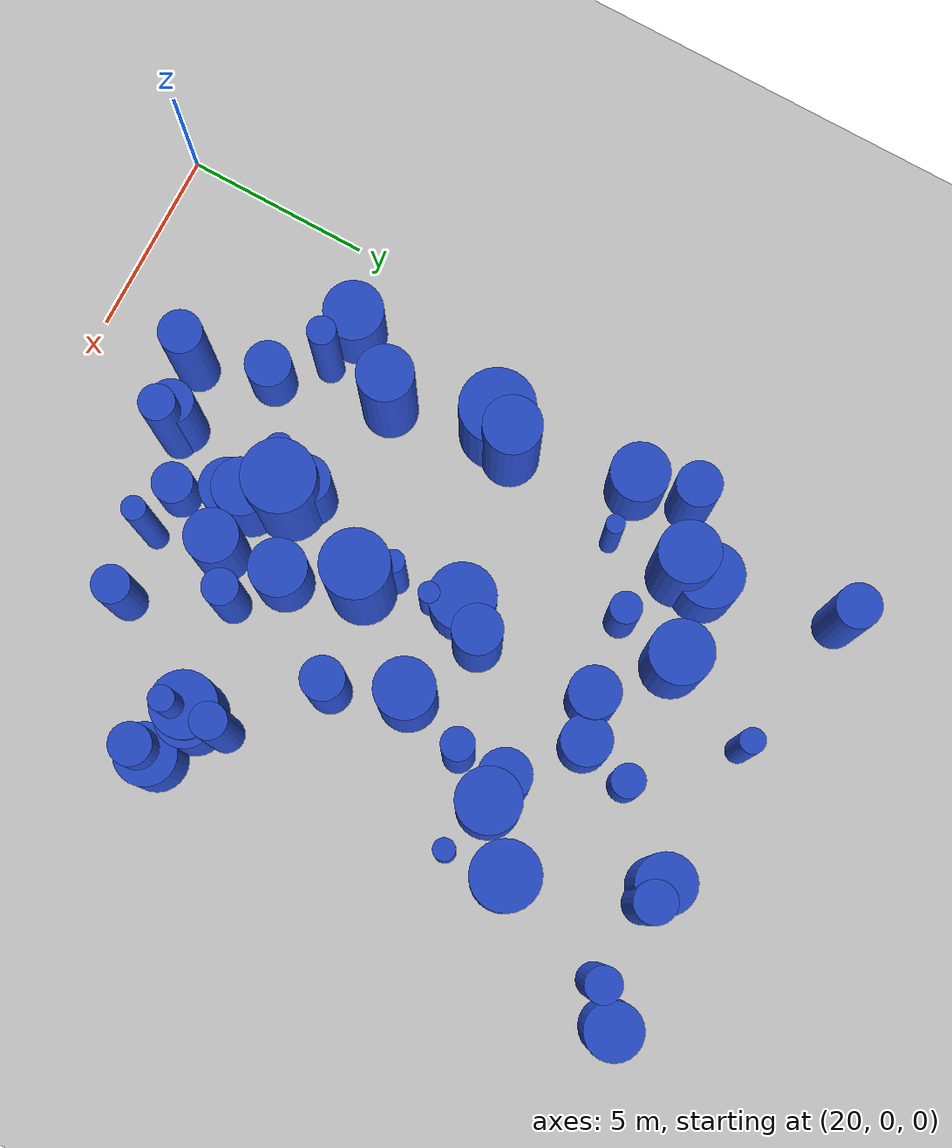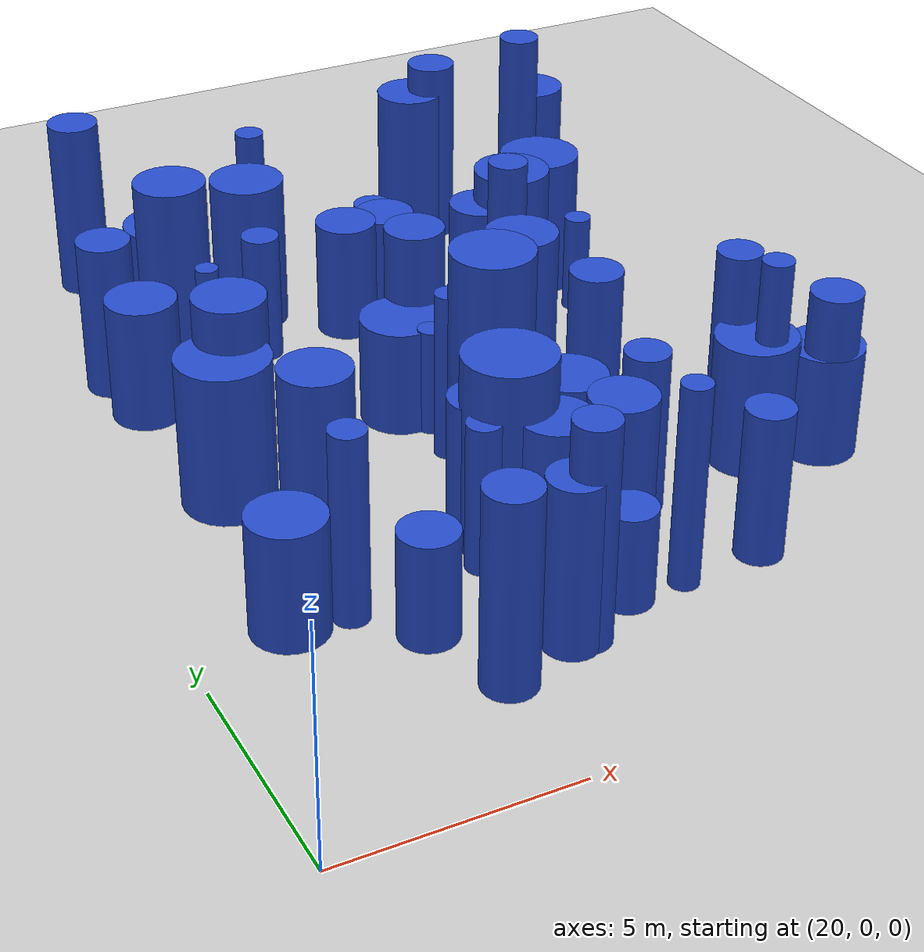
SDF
<sdf version="1.6">
 <world name="default">
  <model name="ground_plane">
   <static>1</static>
   <link name="link">
    <collision name="collision">
     <geometry><plane><normal>0 0 1</normal><size>100 100</size></plane></geometry>
     <surface><friction><ode><mu>100</mu><mu2>50</mu2></ode></friction></surface>
    </collision>
    <visual name="visual">
     <cast_shadows>0</cast_shadows>
     <geometry><plane><normal>0 0 1</normal><size>100 100</size></plane></geometry>
     <material>
      <script><uri>file://media/materials/scripts/gazebo.material</uri><name>Gazebo/Grey</name></script>
     </material>
    </visual>
   </link>
  </model>
  <model name="13">
   <static>0</static>
   <link name="link">
    <inertial>
     <mass>2</mass>
     <inertia><ixx>1.70434</ixx><ixy>0</ixy><ixz>0</ixz><iyy>1.70434</iyy><iyz>0</iyz><izz>0.588243</izz></inertia>
    </inertial>
    <collision name="collision">
     <geometry><cylinder><length>2.90883</length><radius>0.76697</radius></cylinder></geometry>
     <surface><contact><collide_without_contact>1</collide_without_contact></contact></surface>
    </collision>
    <visual name="visual">
     <geometry><cylinder><length>2.90883</length><radius>0.76697</radius></cylinder></geometry>
     <material>
      <script><uri>file://media/materials/scripts/gazebo.material</uri><name>Gazebo/Blue</name></script>
     </material>
    </visual>
    <gravity>0</gravity>
   </link>
   <pose>28.8619 7.69367 1.45441 0 -0 0</pose>
  </model>
  <model name="20">
   <static>0</static>
   <link name="link">
    <inertial>
     <mass>2</mass>
     <inertia><ixx>1.70834</ixx><ixy>0</ixy><ixz>0</ixz><iyy>1.70834</iyy><iyz>0</iyz><izz>0.487048</izz></inertia>
    </inertial>
    <collision name="collision">
     <geometry><cylinder><length>2.96461</length><radius>0.697888</radius></cylinder></geometry>
     <surface><contact><collide_without_contact>1</collide_without_contact></contact></surface>
    </collision>
    <visual name="visual">
     <geometry><cylinder><length>2.96461</length><radius>0.697888</radius></cylinder></geometry>
     <material>
      <script><uri>file://media/materials/scripts/gazebo.material</uri><name>Gazebo/Blue</name></script>
     </material>
    </visual>
    <gravity>0</gravity>
   </link>
   <pose>30.726 15.2064 1.4823 0 -0 0</pose>
  </model>
  <model name="34">
   <static>0</static>
   <link name="link">
    <inertial>
     <mass>2</mass>
     <inertia><ixx>2.43561</ixx><ixy>0</ixy><ixz>0</ixz><iyy>2.43561</iyy><iyz>0</iyz><izz>0.710721</izz></inertia>
    </inertial>
    <collision name="collision">
     <geometry><cylinder><length>3.53292</length><radius>0.843043</radius></cylinder></geometry>
     <surface><contact><collide_without_contact>1</collide_without_contact></contact></surface>
    </collision>
    <visual name="visual">
     <geometry><cylinder><length>3.53292</length><radius>0.843043</radius></cylinder></geometry>
     <material>
      <script><uri>file://media/materials/scripts/gazebo.material</uri><name>Gazebo/Blue</name></script>
     </material>
    </visual>
    <gravity>0</gravity>
   </link>
   <pose>25.9964 17.6182 1.76646 0 -0 0</pose>
  </model>
  <model name="39">
   <static>0</static>
   <link name="link">
    <inertial>
     <mass>2</mass>
     <inertia><ixx>3.37987</ixx><ixy>0</ixy><ixz>0</ixz><iyy>3.37987</iyy><iyz>0</iyz><izz>0.590027</izz></inertia>
    </inertial>
    <collision name="collision">
     <geometry><cylinder><length>4.30223</length><radius>0.768132</radius></cylinder></geometry>
     <surface><contact><collide_without_contact>1</collide_without_contact></contact></surface>
    </collision>
    <visual name="visual">
     <geometry><cylinder><length>4.30223</length><radius>0.768132</radius></cylinder></geometry>
     <material>
      <script><uri>file://media/materials/scripts/gazebo.material</uri><name>Gazebo/Blue</name></script>
     </material>
    </visual>
    <gravity>0</gravity>
   </link>
   <pose>23.0982 11.2765 2.15111 0 -0 0</pose>
  </model>
  <model name="46">
   <static>0</static>
   <link name="link">
    <inertial>
     <mass>2</mass>
     <inertia><ixx>3.78584</ixx><ixy>0</ixy><ixz>0</ixz><iyy>3.78584</iyy><iyz>0</iyz><izz>0.112612</izz></inertia>
    </inertial>
    <collision name="collision">
     <geometry><cylinder><length>4.73045</length><radius>0.335577</radius></cylinder></geometry>
     <surface><contact><collide_without_contact>1</collide_without_contact></contact></surface>
    </collision>
    <visual name="visual">
     <geometry><cylinder><length>4.73045</length><radius>0.335577</radius></cylinder></geometry>
     <material>
      <script><uri>file://media/materials/scripts/gazebo.material</uri><name>Gazebo/Blue</name></script>
     </material>
    </visual>
    <gravity>0</gravity>
   </link>
   <pose>33.1677 7.04828 2.36523 0 -0 0</pose>
  </model>
  <model name="47">
   <static>0</static>
   <link name="link">
    <inertial>
     <mass>2</mass>
     <inertia><ixx>3.36538</ixx><ixy>0</ixy><ixz>0</ixz><iyy>3.36538</iyy><iyz>0</iyz><izz>0.233826</izz></inertia>
    </inertial>
    <collision name="collision">
     <geometry><cylinder><length>4.41484</length><radius>0.483555</radius></cylinder></geometry>
     <surface><contact><collide_without_contact>1</collide_without_contact></contact></surface>
    </collision>
    <visual name="visual">
     <geometry><cylinder><length>4.41484</length><radius>0.483555</radius></cylinder></geometry>
     <material>
      <script><uri>file://media/materials/scripts/gazebo.material</uri><name>Gazebo/Blue</name></script>
     </material>
    </visual>
    <gravity>0</gravity>
   </link>
   <pose>33.0919 8.26592 2.20742 0 -0 0</pose>
  </model>
  <model name="60">
   <static>0</static>
   <link name="link">
    <inertial>
     <mass>2</mass>
     <inertia><ixx>1.10854</ixx><ixy>0</ixy><ixz>0</ixz><iyy>1.10854</iyy><iyz>0</iyz><izz>0.377234</izz></inertia>
    </inertial>
    <collision name="collision">
     <geometry><cylinder><length>2.34937</length><radius>0.614194</radius></cylinder></geometry>
     <surface><contact><collide_without_contact>1</collide_without_contact></contact></surface>
    </collision>
    <visual name="visual">
     <geometry><cylinder><length>2.34937</length><radius>0.614194</radius></cylinder></geometry>
     <material>
      <script><uri>file://media/materials/scripts/gazebo.material</uri><name>Gazebo/Blue</name></script>
     </material>
    </visual>
    <gravity>0</gravity>
   </link>
   <pose>24.3057 4.8136 1.17468 0 -0 0</pose>
  </model>
  <model name="62">
   <static>0</static>
   <link name="link">
    <inertial>
     <mass>2</mass>
     <inertia><ixx>1.51598</ixx><ixy>0</ixy><ixz>0</ixz><iyy>1.51598</iyy><iyz>0</iyz><izz>0.623706</izz></inertia>
    </inertial>
    <collision name="collision">
     <geometry><cylinder><length>2.68789</length><radius>0.789751</radius></cylinder></geometry>
     <surface><contact><collide_without_contact>1</collide_without_contact></contact></surface>
    </collision>
    <visual name="visual">
     <geometry><cylinder><length>2.68789</length><radius>0.789751</radius></cylinder></geometry>
     <material>
      <script><uri>file://media/materials/scripts/gazebo.material</uri><name>Gazebo/Blue</name></script>
     </material>
    </visual>
    <gravity>0</gravity>
   </link>
   <pose>33.2636 7.46518 1.34395 0 -0 0</pose>
  </model>
  <model name="78">
   <static>0</static>
   <link name="link">
    <inertial>
     <mass>2</mass>
     <inertia><ixx>1.63411</ixx><ixy>0</ixy><ixz>0</ixz><iyy>1.63411</iyy><iyz>0</iyz><izz>0.609649</izz></inertia>
    </inertial>
    <collision name="collision">
     <geometry><cylinder><length>2.82413</length><radius>0.7808</radius></cylinder></geometry>
     <surface><contact><collide_without_contact>1</collide_without_contact></contact></surface>
    </collision>
    <visual name="visual">
     <geometry><cylinder><length>2.82413</length><radius>0.7808</radius></cylinder></geometry>
     <material>
      <script><uri>file://media/materials/scripts/gazebo.material</uri><name>Gazebo/Blue</name></script>
     </material>
    </visual>
    <gravity>0</gravity>
   </link>
   <pose>22.3342 14.5742 1.41207 0 -0 0</pose>
  </model>
  <model name="87">
   <static>0</static>
   <link name="link">
    <inertial>
     <mass>2</mass>
     <inertia><ixx>3.47091</ixx><ixy>0</ixy><ixz>0</ixz><iyy>3.47091</iyy><iyz>0</iyz><izz>0.644605</izz></inertia>
    </inertial>
    <collision name="collision">
     <geometry><cylinder><length>4.34645</length><radius>0.802873</radius></cylinder></geometry>
     <surface><contact><collide_without_contact>1</collide_without_contact></contact></surface>
    </collision>
    <visual name="visual">
     <geometry><cylinder><length>4.34645</length><radius>0.802873</radius></cylinder></geometry>
     <material>
      <script><uri>file://media/materials/scripts/gazebo.material</uri><name>Gazebo/Blue</name></script>
     </material>
    </visual>
    <gravity>0</gravity>
   </link>
   <pose>23.8248 16.6199 2.17323 0 -0 0</pose>
  </model>
  <model name="91">
   <static>0</static>
   <link name="link">
    <inertial>
     <mass>2</mass>
     <inertia><ixx>1.81304</ixx><ixy>0</ixy><ixz>0</ixz><iyy>1.81304</iyy><iyz>0</iyz><izz>0.779024</izz></inertia>
    </inertial>
    <collision name="collision">
     <geometry><cylinder><length>2.92252</length><radius>0.882623</radius></cylinder></geometry>
     <surface><contact><collide_without_contact>1</collide_without_contact></contact></surface>
    </collision>
    <visual name="visual">
     <geometry><cylinder><length>2.92252</length><radius>0.882623</radius></cylinder></geometry>
     <material>
      <script><uri>file://media/materials/scripts/gazebo.material</uri><name>Gazebo/Blue</name></script>
     </material>
    </visual>
    <gravity>0</gravity>
   </link>
   <pose>33.0012 7.31811 1.46126 0 -0 0</pose>
  </model>
  <model name="101">
   <static>0</static>
   <link name="link">
    <inertial>
     <mass>2</mass>
     <inertia>
      <ixx>0.931998</ixx>
      <ixy>0</ixy>
      <ixz>0</ixz>
      <iyy>0.931998</iyy>
      <iyz>0</iyz>
      <izz>0.0897076</izz>
     </inertia>
    </inertial>
    <collision name="collision">
     <geometry><cylinder><length>2.30713</length><radius>0.299512</radius></cylinder></geometry>
     <surface><contact><collide_without_contact>1</collide_without_contact></contact></surface>
    </collision>
    <visual name="visual">
     <geometry><cylinder><length>2.30713</length><radius>0.299512</radius></cylinder></geometry>
     <material>
      <script><uri>file://media/materials/scripts/gazebo.material</uri><name>Gazebo/Blue</name></script>
     </material>
    </visual>
    <gravity>0</gravity>
   </link>
   <pose>33.0448 14.7316 1.15357 0 -0 0</pose>
  </model>
  <model name="102">
   <static>0</static>
   <link name="link">
    <inertial>
     <mass>2</mass>
     <inertia><ixx>3.95692</ixx><ixy>0</ixy><ixz>0</ixz><iyy>3.95692</iyy><iyz>0</iyz><izz>0.21991</izz></inertia>
    </inertial>
    <collision name="collision">
     <geometry><cylinder><length>4.80435</length><radius>0.468946</radius></cylinder></geometry>
     <surface><contact><collide_without_contact>1</collide_without_contact></contact></surface>
    </collision>
    <visual name="visual">
     <geometry><cylinder><length>4.80435</length><radius>0.468946</radius></cylinder></geometry>
     <material>
      <script><uri>file://media/materials/scripts/gazebo.material</uri><name>Gazebo/Blue</name></script>
     </material>
    </visual>
    <gravity>0</gravity>
   </link>
   <pose>26.8728 3.3592 2.40217 0 -0 0</pose>
  </model>
  <model name="112">
   <static>0</static>
   <link name="link">
    <inertial>
     <mass>2</mass>
     <inertia><ixx>3.3803</ixx><ixy>0</ixy><ixz>0</ixz><iyy>3.3803</iyy><iyz>0</iyz><izz>0.0999277</izz></inertia>
    </inertial>
    <collision name="collision">
     <geometry><cylinder><length>4.47013</length><radius>0.316113</radius></cylinder></geometry>
     <surface><contact><collide_without_contact>1</collide_without_contact></contact></surface>
    </collision>
    <visual name="visual">
     <geometry><cylinder><length>4.47013</length><radius>0.316113</radius></cylinder></geometry>
     <material>
      <script><uri>file://media/materials/scripts/gazebo.material</uri><name>Gazebo/Blue</name></script>
     </material>
    </visual>
    <gravity>0</gravity>
   </link>
   <pose>29.4086 4.09271 2.23506 0 -0 0</pose>
  </model>
  <model name="114">
   <static>0</static>
   <link name="link">
    <inertial>
     <mass>2</mass>
     <inertia><ixx>4.50475</ixx><ixy>0</ixy><ixz>0</ixz><iyy>4.50475</iyy><iyz>0</iyz><izz>0.798311</izz></inertia>
    </inertial>
    <collision name="collision">
     <geometry><cylinder><length>4.96322</length><radius>0.893483</radius></cylinder></geometry>
     <surface><contact><collide_without_contact>1</collide_without_contact></contact></surface>
    </collision>
    <visual name="visual">
     <geometry><cylinder><length>4.96322</length><radius>0.893483</radius></cylinder></geometry>
     <material>
      <script><uri>file://media/materials/scripts/gazebo.material</uri><name>Gazebo/Blue</name></script>
     </material>
    </visual>
    <gravity>0</gravity>
   </link>
   <pose>28.0834 9.5925 2.48161 0 -0 0</pose>
  </model>
  <model name="115">
   <static>0</static>
   <link name="link">
    <inertial>
     <mass>2</mass>
     <inertia><ixx>1.85668</ixx><ixy>0</ixy><ixz>0</ixz><iyy>1.85668</iyy><iyz>0</iyz><izz>0.738716</izz></inertia>
    </inertial>
    <collision name="collision">
     <geometry><cylinder><length>2.98729</length><radius>0.859486</radius></cylinder></geometry>
     <surface><contact><collide_without_contact>1</collide_without_contact></contact></surface>
    </collision>
    <visual name="visual">
     <geometry><cylinder><length>2.98729</length><radius>0.859486</radius></cylinder></geometry>
     <material>
      <script><uri>file://media/materials/scripts/gazebo.material</uri><name>Gazebo/Blue</name></script>
     </material>
    </visual>
    <gravity>0</gravity>
   </link>
   <pose>23.8388 17.3837 1.49365 0 -0 0</pose>
  </model>
  <model name="151">
   <static>0</static>
   <link name="link">
    <inertial>
     <mass>2</mass>
     <inertia><ixx>1.37552</ixx><ixy>0</ixy><ixz>0</ixz><iyy>1.37552</iyy><iyz>0</iyz><izz>0.680923</izz></inertia>
    </inertial>
    <collision name="collision">
     <geometry><cylinder><length>2.49206</length><radius>0.82518</radius></cylinder></geometry>
     <surface><contact><collide_without_contact>1</collide_without_contact></contact></surface>
    </collision>
    <visual name="visual">
     <geometry><cylinder><length>2.49206</length><radius>0.82518</radius></cylinder></geometry>
     <material>
      <script><uri>file://media/materials/scripts/gazebo.material</uri><name>Gazebo/Blue</name></script>
     </material>
    </visual>
    <gravity>0</gravity>
   </link>
   <pose>34.5375 7.01916 1.24603 0 -0 0</pose>
  </model>
  <model name="162">
   <static>0</static>
   <link name="link">
    <inertial>
     <mass>2</mass>
     <inertia><ixx>2.4475</ixx><ixy>0</ixy><ixz>0</ixz><iyy>2.4475</iyy><iyz>0</iyz><izz>0.34297</izz></inertia>
    </inertial>
    <collision name="collision">
     <geometry><cylinder><length>3.69542</length><radius>0.585636</radius></cylinder></geometry>
     <surface><contact><collide_without_contact>1</collide_without_contact></contact></surface>
    </collision>
    <visual name="visual">
     <geometry><cylinder><length>3.69542</length><radius>0.585636</radius></cylinder></geometry>
     <material>
      <script><uri>file://media/materials/scripts/gazebo.material</uri><name>Gazebo/Blue</name></script>
     </material>
    </visual>
    <gravity>0</gravity>
   </link>
   <pose>26.54 3.40689 1.84771 0 -0 0</pose>
  </model>
  <model name="208">
   <static>0</static>
   <link name="link">
    <inertial>
     <mass>2</mass>
     <inertia><ixx>1.46397</ixx><ixy>0</ixy><ixz>0</ixz><iyy>1.46397</iyy><iyz>0</iyz><izz>0.473892</izz></inertia>
    </inertial>
    <collision name="collision">
     <geometry><cylinder><length>2.71333</length><radius>0.688398</radius></cylinder></geometry>
     <surface><contact><collide_without_contact>1</collide_without_contact></contact></surface>
    </collision>
    <visual name="visual">
     <geometry><cylinder><length>2.71333</length><radius>0.688398</radius></cylinder></geometry>
     <material>
      <script><uri>file://media/materials/scripts/gazebo.material</uri><name>Gazebo/Blue</name></script>
     </material>
    </visual>
    <gravity>0</gravity>
   </link>
   <pose>27.8096 16.1952 1.35667 0 -0 0</pose>
  </model>
  <model name="223">
   <static>0</static>
   <link name="link">
    <inertial>
     <mass>2</mass>
     <inertia><ixx>2.21904</ixx><ixy>0</ixy><ixz>0</ixz><iyy>2.21904</iyy><iyz>0</iyz><izz>0.848095</izz></inertia>
    </inertial>
    <collision name="collision">
     <geometry><cylinder><length>3.28177</length><radius>0.920921</radius></cylinder></geometry>
     <surface><contact><collide_without_contact>1</collide_without_contact></contact></surface>
    </collision>
    <visual name="visual">
     <geometry><cylinder><length>3.28177</length><radius>0.920921</radius></cylinder></geometry>
     <material>
      <script><uri>file://media/materials/scripts/gazebo.material</uri><name>Gazebo/Blue</name></script>
     </material>
    </visual>
    <gravity>0</gravity>
   </link>
   <pose>32.9111 16.3928 1.64088 0 -0 0</pose>
  </model>
  <model name="238">
   <static>0</static>
   <link name="link">
    <inertial>
     <mass>2</mass>
     <inertia><ixx>2.01822</ixx><ixy>0</ixy><ixz>0</ixz><iyy>2.01822</iyy><iyz>0</iyz><izz>0.113339</izz></inertia>
    </inertial>
    <collision name="collision">
     <geometry><cylinder><length>3.43065</length><radius>0.336659</radius></cylinder></geometry>
     <surface><contact><collide_without_contact>1</collide_without_contact></contact></surface>
    </collision>
    <visual name="visual">
     <geometry><cylinder><length>3.43065</length><radius>0.336659</radius></cylinder></geometry>
     <material>
      <script><uri>file://media/materials/scripts/gazebo.material</uri><name>Gazebo/Blue</name></script>
     </material>
    </visual>
    <gravity>0</gravity>
   </link>
   <pose>27.1013 20.1795 1.71532 0 -0 0</pose>
  </model>
  <model name="244">
   <static>0</static>
   <link name="link">
    <inertial>
     <mass>2</mass>
     <inertia><ixx>2.34129</ixx><ixy>0</ixy><ixz>0</ixz><iyy>2.34129</iyy><iyz>0</iyz><izz>0.33506</izz></inertia>
    </inertial>
    <collision name="collision">
     <geometry><cylinder><length>3.61145</length><radius>0.578844</radius></cylinder></geometry>
     <surface><contact><collide_without_contact>1</collide_without_contact></contact></surface>
    </collision>
    <visual name="visual">
     <geometry><cylinder><length>3.61145</length><radius>0.578844</radius></cylinder></geometry>
     <material>
      <script><uri>file://media/materials/scripts/gazebo.material</uri><name>Gazebo/Blue</name></script>
     </material>
    </visual>
    <gravity>0</gravity>
   </link>
   <pose>30.8207 10.1139 1.80572 0 -0 0</pose>
  </model>
  <model name="252">
   <static>0</static>
   <link name="link">
    <inertial>
     <mass>2</mass>
     <inertia><ixx>2.95817</ixx><ixy>0</ixy><ixz>0</ixz><iyy>2.95817</iyy><iyz>0</iyz><izz>0.143518</izz></inertia>
    </inertial>
    <collision name="collision">
     <geometry><cylinder><length>4.16155</length><radius>0.378837</radius></cylinder></geometry>
     <surface><contact><collide_without_contact>1</collide_without_contact></contact></surface>
    </collision>
    <visual name="visual">
     <geometry><cylinder><length>4.16155</length><radius>0.378837</radius></cylinder></geometry>
     <material>
      <script><uri>file://media/materials/scripts/gazebo.material</uri><name>Gazebo/Blue</name></script>
     </material>
    </visual>
    <gravity>0</gravity>
   </link>
   <pose>23.2345 5.92443 2.08077 0 -0 0</pose>
  </model>
  <model name="257">
   <static>0</static>
   <link name="link">
    <inertial>
     <mass>2</mass>
     <inertia><ixx>1.56537</ixx><ixy>0</ixy><ixz>0</ixz><iyy>1.56537</iyy><iyz>0</iyz><izz>0.177671</izz></inertia>
    </inertial>
    <collision name="collision">
     <geometry><cylinder><length>2.97645</length><radius>0.42151</radius></cylinder></geometry>
     <surface><contact><collide_without_contact>1</collide_without_contact></contact></surface>
    </collision>
    <visual name="visual">
     <geometry><cylinder><length>2.97645</length><radius>0.42151</radius></cylinder></geometry>
     <material>
      <script><uri>file://media/materials/scripts/gazebo.material</uri><name>Gazebo/Blue</name></script>
     </material>
    </visual>
    <gravity>0</gravity>
   </link>
   <pose>25.5932 15.8806 1.48822 0 -0 0</pose>
  </model>
  <model name="259">
   <static>0</static>
   <link name="link">
    <inertial>
     <mass>2</mass>
     <inertia><ixx>3.12119</ixx><ixy>0</ixy><ixz>0</ixz><iyy>3.12119</iyy><iyz>0</iyz><izz>0.337303</izz></inertia>
    </inertial>
    <collision name="collision">
     <geometry><cylinder><length>4.20894</length><radius>0.580778</radius></cylinder></geometry>
     <surface><contact><collide_without_contact>1</collide_without_contact></contact></surface>
    </collision>
    <visual name="visual">
     <geometry><cylinder><length>4.20894</length><radius>0.580778</radius></cylinder></geometry>
     <material>
      <script><uri>file://media/materials/scripts/gazebo.material</uri><name>Gazebo/Blue</name></script>
     </material>
    </visual>
    <gravity>0</gravity>
   </link>
   <pose>23.0142 20.8935 2.10447 0 -0 0</pose>
  </model>
  <model name="263">
   <static>0</static>
   <link name="link">
    <inertial>
     <mass>2</mass>
     <inertia><ixx>2.32539</ixx><ixy>0</ixy><ixz>0</ixz><iyy>2.32539</iyy><iyz>0</iyz><izz>0.354102</izz></inertia>
    </inertial>
    <collision name="collision">
     <geometry><cylinder><length>3.59027</length><radius>0.595065</radius></cylinder></geometry>
     <surface><contact><collide_without_contact>1</collide_without_contact></contact></surface>
    </collision>
    <visual name="visual">
     <geometry><cylinder><length>3.59027</length><radius>0.595065</radius></cylinder></geometry>
     <material>
      <script><uri>file://media/materials/scripts/gazebo.material</uri><name>Gazebo/Blue</name></script>
     </material>
    </visual>
    <gravity>0</gravity>
   </link>
   <pose>22.0576 16.0356 1.79513 0 -0 0</pose>
  </model>
  <model name="265">
   <static>0</static>
   <link name="link">
    <inertial>
     <mass>2</mass>
     <inertia><ixx>2.73754</ixx><ixy>0</ixy><ixz>0</ixz><iyy>2.73754</iyy><iyz>0</iyz><izz>0.622234</izz></inertia>
    </inertial>
    <collision name="collision">
     <geometry><cylinder><length>3.81556</length><radius>0.788818</radius></cylinder></geometry>
     <surface><contact><collide_without_contact>1</collide_without_contact></contact></surface>
    </collision>
    <visual name="visual">
     <geometry><cylinder><length>3.81556</length><radius>0.788818</radius></cylinder></geometry>
     <material>
      <script><uri>file://media/materials/scripts/gazebo.material</uri><name>Gazebo/Blue</name></script>
     </material>
    </visual>
    <gravity>0</gravity>
   </link>
   <pose>31.2336 19.9196 1.90778 0 -0 0</pose>
  </model>
  <model name="280">
   <static>0</static>
   <link name="link">
    <inertial>
     <mass>2</mass>
     <inertia><ixx>3.98305</ixx><ixy>0</ixy><ixz>0</ixz><iyy>3.98305</iyy><iyz>0</iyz><izz>0.22391</izz></inertia>
    </inertial>
    <collision name="collision">
     <geometry><cylinder><length>4.8194</length><radius>0.473192</radius></cylinder></geometry>
     <surface><contact><collide_without_contact>1</collide_without_contact></contact></surface>
    </collision>
    <visual name="visual">
     <geometry><cylinder><length>4.8194</length><radius>0.473192</radius></cylinder></geometry>
     <material>
      <script><uri>file://media/materials/scripts/gazebo.material</uri><name>Gazebo/Blue</name></script>
     </material>
    </visual>
    <gravity>0</gravity>
   </link>
   <pose>34.0991 19.6522 2.4097 0 -0 0</pose>
  </model>
  <model name="288">
   <static>0</static>
   <link name="link">
    <inertial>
     <mass>2</mass>
     <inertia><ixx>2.12665</ixx><ixy>0</ixy><ixz>0</ixz><iyy>2.12665</iyy><iyz>0</iyz><izz>0.506868</izz></inertia>
    </inertial>
    <collision name="collision">
     <geometry><cylinder><length>3.3525</length><radius>0.711946</radius></cylinder></geometry>
     <surface><contact><collide_without_contact>1</collide_without_contact></contact></surface>
    </collision>
    <visual name="visual">
     <geometry><cylinder><length>3.3525</length><radius>0.711946</radius></cylinder></geometry>
     <material>
      <script><uri>file://media/materials/scripts/gazebo.material</uri><name>Gazebo/Blue</name></script>
     </material>
    </visual>
    <gravity>0</gravity>
   </link>
   <pose>28.9908 5.90188 1.67625 0 -0 0</pose>
  </model>
  <model name="291">
   <static>0</static>
   <link name="link">
    <inertial>
     <mass>2</mass>
     <inertia><ixx>3.1864</ixx><ixy>0</ixy><ixz>0</ixz><iyy>3.1864</iyy><iyz>0</iyz><izz>0.322438</izz></inertia>
    </inertial>
    <collision name="collision">
     <geometry><cylinder><length>4.26041</length><radius>0.567836</radius></cylinder></geometry>
     <surface><contact><collide_without_contact>1</collide_without_contact></contact></surface>
    </collision>
    <visual name="visual">
     <geometry><cylinder><length>4.26041</length><radius>0.567836</radius></cylinder></geometry>
     <material>
      <script><uri>file://media/materials/scripts/gazebo.material</uri><name>Gazebo/Blue</name></script>
     </material>
    </visual>
    <gravity>0</gravity>
   </link>
   <pose>24.9587 2.85978 2.1302 0 -0 0</pose>
  </model>
  <model name="304">
   <static>0</static>
   <link name="link">
    <inertial>
     <mass>2</mass>
     <inertia><ixx>1.93853</ixx><ixy>0</ixy><ixz>0</ixz><iyy>1.93853</iyy><iyz>0</iyz><izz>0.416665</izz></inertia>
    </inertial>
    <collision name="collision">
     <geometry><cylinder><length>3.22198</length><radius>0.645496</radius></cylinder></geometry>
     <surface><contact><collide_without_contact>1</collide_without_contact></contact></surface>
    </collision>
    <visual name="visual">
     <geometry><cylinder><length>3.22198</length><radius>0.645496</radius></cylinder></geometry>
     <material>
      <script><uri>file://media/materials/scripts/gazebo.material</uri><name>Gazebo/Blue</name></script>
     </material>
    </visual>
    <gravity>0</gravity>
   </link>
   <pose>26.5999 7.26778 1.61099 0 -0 0</pose>
  </model>
  <model name="310">
   <static>0</static>
   <link name="link">
    <inertial>
     <mass>2</mass>
     <inertia><ixx>3.43589</ixx><ixy>0</ixy><ixz>0</ixz><iyy>3.43589</iyy><iyz>0</iyz><izz>0.553224</izz></inertia>
    </inertial>
    <collision name="collision">
     <geometry><cylinder><length>4.35381</length><radius>0.74379</radius></cylinder></geometry>
     <surface><contact><collide_without_contact>1</collide_without_contact></contact></surface>
    </collision>
    <visual name="visual">
     <geometry><cylinder><length>4.35381</length><radius>0.74379</radius></cylinder></geometry>
     <material>
      <script><uri>file://media/materials/scripts/gazebo.material</uri><name>Gazebo/Blue</name></script>
     </material>
    </visual>
    <gravity>0</gravity>
   </link>
   <pose>23.4674 7.87189 2.1769 0 -0 0</pose>
  </model>
  <model name="314">
   <static>0</static>
   <link name="link">
    <inertial>
     <mass>2</mass>
     <inertia><ixx>1.98252</ixx><ixy>0</ixy><ixz>0</ixz><iyy>1.98252</iyy><iyz>0</iyz><izz>0.25549</izz></inertia>
    </inertial>
    <collision name="collision">
     <geometry><cylinder><length>3.33596</length><radius>0.50546</radius></cylinder></geometry>
     <surface><contact><collide_without_contact>1</collide_without_contact></contact></surface>
    </collision>
    <visual name="visual">
     <geometry><cylinder><length>3.33596</length><radius>0.50546</radius></cylinder></geometry>
     <material>
      <script><uri>file://media/materials/scripts/gazebo.material</uri><name>Gazebo/Blue</name></script>
     </material>
    </visual>
    <gravity>0</gravity>
   </link>
   <pose>31.259 4.30352 1.66798 0 -0 0</pose>
  </model>
  <model name="329">
   <static>0</static>
   <link name="link">
    <inertial>
     <mass>2</mass>
     <inertia><ixx>2.38208</ixx><ixy>0</ixy><ixz>0</ixz><iyy>2.38208</iyy><iyz>0</iyz><izz>0.992538</izz></inertia>
    </inertial>
    <collision name="collision">
     <geometry><cylinder><length>3.36375</length><radius>0.996262</radius></cylinder></geometry>
     <surface><contact><collide_without_contact>1</collide_without_contact></contact></surface>
    </collision>
    <visual name="visual">
     <geometry><cylinder><length>3.36375</length><radius>0.996262</radius></cylinder></geometry>
     <material>
      <script><uri>file://media/materials/scripts/gazebo.material</uri><name>Gazebo/Blue</name></script>
     </material>
    </visual>
    <gravity>0</gravity>
   </link>
   <pose>22.6668 10.6296 1.68188 0 -0 0</pose>
  </model>
  <model name="331">
   <static>0</static>
   <link name="link">
    <inertial>
     <mass>2</mass>
     <inertia><ixx>2.62158</ixx><ixy>0</ixy><ixz>0</ixz><iyy>2.62158</iyy><iyz>0</iyz><izz>0.736227</izz></inertia>
    </inertial>
    <collision name="collision">
     <geometry><cylinder><length>3.67707</length><radius>0.858037</radius></cylinder></geometry>
     <surface><contact><collide_without_contact>1</collide_without_contact></contact></surface>
    </collision>
    <visual name="visual">
     <geometry><cylinder><length>3.67707</length><radius>0.858037</radius></cylinder></geometry>
     <material>
      <script><uri>file://media/materials/scripts/gazebo.material</uri><name>Gazebo/Blue</name></script>
     </material>
    </visual>
    <gravity>0</gravity>
   </link>
   <pose>31.5044 15.1569 1.83853 0 -0 0</pose>
  </model>
  <model name="335">
   <static>0</static>
   <link name="link">
    <inertial>
     <mass>2</mass>
     <inertia><ixx>1.86455</ixx><ixy>0</ixy><ixz>0</ixz><iyy>1.86455</iyy><iyz>0</iyz><izz>0.131752</izz></inertia>
    </inertial>
    <collision name="collision">
     <geometry><cylinder><length>3.28512</length><radius>0.362977</radius></cylinder></geometry>
     <surface><contact><collide_without_contact>1</collide_without_contact></contact></surface>
    </collision>
    <visual name="visual">
     <geometry><cylinder><length>3.28512</length><radius>0.362977</radius></cylinder></geometry>
     <material>
      <script><uri>file://media/materials/scripts/gazebo.material</uri><name>Gazebo/Blue</name></script>
     </material>
    </visual>
    <gravity>0</gravity>
   </link>
   <pose>26.1942 6.28572 1.64256 0 -0 0</pose>
  </model>
  <model name="351">
   <static>0</static>
   <link name="link">
    <inertial>
     <mass>2</mass>
     <inertia><ixx>1.0319</ixx><ixy>0</ixy><ixz>0</ixz><iyy>1.0319</iyy><iyz>0</iyz><izz>0.0812005</izz></inertia>
    </inertial>
    <collision name="collision">
     <geometry><cylinder><length>2.43881</length><radius>0.284957</radius></cylinder></geometry>
     <surface><contact><collide_without_contact>1</collide_without_contact></contact></surface>
    </collision>
    <visual name="visual">
     <geometry><cylinder><length>2.43881</length><radius>0.284957</radius></cylinder></geometry>
     <material>
      <script><uri>file://media/materials/scripts/gazebo.material</uri><name>Gazebo/Blue</name></script>
     </material>
    </visual>
    <gravity>0</gravity>
   </link>
   <pose>27.5466 11.3063 1.21941 0 -0 0</pose>
  </model>
  <model name="363">
   <static>0</static>
   <link name="link">
    <inertial>
     <mass>2</mass>
     <inertia><ixx>3.55493</ixx><ixy>0</ixy><ixz>0</ixz><iyy>3.55493</iyy><iyz>0</iyz><izz>0.18867</izz></inertia>
    </inertial>
    <collision name="collision">
     <geometry><cylinder><length>4.55671</length><radius>0.434362</radius></cylinder></geometry>
     <surface><contact><collide_without_contact>1</collide_without_contact></contact></surface>
    </collision>
    <visual name="visual">
     <geometry><cylinder><length>4.55671</length><radius>0.434362</radius></cylinder></geometry>
     <material>
      <script><uri>file://media/materials/scripts/gazebo.material</uri><name>Gazebo/Blue</name></script>
     </material>
    </visual>
    <gravity>0</gravity>
   </link>
   <pose>30.7087 13.8659 2.27835 0 -0 0</pose>
  </model>
  <model name="369">
   <static>0</static>
   <link name="link">
    <inertial>
     <mass>2</mass>
     <inertia><ixx>2.7388</ixx><ixy>0</ixy><ixz>0</ixz><iyy>2.7388</iyy><iyz>0</iyz><izz>0.638157</izz></inertia>
    </inertial>
    <collision name="collision">
     <geometry><cylinder><length>3.81029</length><radius>0.798847</radius></cylinder></geometry>
     <surface><contact><collide_without_contact>1</collide_without_contact></contact></surface>
    </collision>
    <visual name="visual">
     <geometry><cylinder><length>3.81029</length><radius>0.798847</radius></cylinder></geometry>
     <material>
      <script><uri>file://media/materials/scripts/gazebo.material</uri><name>Gazebo/Blue</name></script>
     </material>
    </visual>
    <gravity>0</gravity>
   </link>
   <pose>30.0812 12.0301 1.90515 0 -0 0</pose>
  </model>
  <model name="371">
   <static>0</static>
   <link name="link">
    <inertial>
     <mass>2</mass>
     <inertia>
      <ixx>0.789403</ixx>
      <ixy>0</ixy>
      <ixz>0</ixz>
      <iyy>0.789403</iyy>
      <iyz>0</iyz>
      <izz>0.208275</izz>
     </inertia>
    </inertial>
    <collision name="collision">
     <geometry><cylinder><length>2.02771</length><radius>0.456372</radius></cylinder></geometry>
     <surface><contact><collide_without_contact>1</collide_without_contact></contact></surface>
    </collision>
    <visual name="visual">
     <geometry><cylinder><length>2.02771</length><radius>0.456372</radius></cylinder></geometry>
     <material>
      <script><uri>file://media/materials/scripts/gazebo.material</uri><name>Gazebo/Blue</name></script>
     </material>
    </visual>
    <gravity>0</gravity>
   </link>
   <pose>29.316 17.9932 1.01385 0 -0 0</pose>
  </model>
  <model name="379">
   <static>0</static>
   <link name="link">
    <inertial>
     <mass>2</mass>
     <inertia>
      <ixx>1.67846</ixx>
      <ixy>0</ixy>
      <ixz>0</ixz>
      <iyy>1.67846</iyy>
      <iyz>0</iyz>
      <izz>0.0636535</izz>
     </inertia>
    </inertial>
    <collision name="collision">
     <geometry><cylinder><length>3.14322</length><radius>0.252297</radius></cylinder></geometry>
     <surface><contact><collide_without_contact>1</collide_without_contact></contact></surface>
    </collision>
    <visual name="visual">
     <geometry><cylinder><length>3.14322</length><radius>0.252297</radius></cylinder></geometry>
     <material>
      <script><uri>file://media/materials/scripts/gazebo.material</uri><name>Gazebo/Blue</name></script>
     </material>
    </visual>
    <gravity>0</gravity>
   </link>
   <pose>23.8722 14.6533 1.57161 0 -0 0</pose>
  </model>
  <model name="388">
   <static>0</static>
   <link name="link">
    <inertial>
     <mass>2</mass>
     <inertia><ixx>3.50226</ixx><ixy>0</ixy><ixz>0</ixz><iyy>3.50226</iyy><iyz>0</iyz><izz>0.313146</izz></inertia>
    </inertial>
    <collision name="collision">
     <geometry><cylinder><length>4.48042</length><radius>0.559594</radius></cylinder></geometry>
     <surface><contact><collide_without_contact>1</collide_without_contact></contact></surface>
    </collision>
    <visual name="visual">
     <geometry><cylinder><length>4.48042</length><radius>0.559594</radius></cylinder></geometry>
     <material>
      <script><uri>file://media/materials/scripts/gazebo.material</uri><name>Gazebo/Blue</name></script>
     </material>
    </visual>
    <gravity>0</gravity>
   </link>
   <pose>31.7749 19.8539 2.24021 0 -0 0</pose>
  </model>
  <model name="391">
   <static>0</static>
   <link name="link">
    <inertial>
     <mass>2</mass>
     <inertia><ixx>1.24497</ixx><ixy>0</ixy><ixz>0</ixz><iyy>1.24497</iyy><iyz>0</iyz><izz>0.701377</izz></inertia>
    </inertial>
    <collision name="collision">
     <geometry><cylinder><length>2.3164</length><radius>0.837482</radius></cylinder></geometry>
     <surface><contact><collide_without_contact>1</collide_without_contact></contact></surface>
    </collision>
    <visual name="visual">
     <geometry><cylinder><length>2.3164</length><radius>0.837482</radius></cylinder></geometry>
     <material>
      <script><uri>file://media/materials/scripts/gazebo.material</uri><name>Gazebo/Blue</name></script>
     </material>
    </visual>
    <gravity>0</gravity>
   </link>
   <pose>28.0549 9.60051 1.1582 0 -0 0</pose>
  </model>
  <model name="393">
   <static>0</static>
   <link name="link">
    <inertial>
     <mass>2</mass>
     <inertia><ixx>2.87304</ixx><ixy>0</ixy><ixz>0</ixz><iyy>2.87304</iyy><iyz>0</iyz><izz>0.430046</izz></inertia>
    </inertial>
    <collision name="collision">
     <geometry><cylinder><length>3.99351</length><radius>0.655779</radius></cylinder></geometry>
     <surface><contact><collide_without_contact>1</collide_without_contact></contact></surface>
    </collision>
    <visual name="visual">
     <geometry><cylinder><length>3.99351</length><radius>0.655779</radius></cylinder></geometry>
     <material>
      <script><uri>file://media/materials/scripts/gazebo.material</uri><name>Gazebo/Blue</name></script>
     </material>
    </visual>
    <gravity>0</gravity>
   </link>
   <pose>27.9623 12.9246 1.99675 0 -0 0</pose>
  </model>
  <model name="421">
   <static>0</static>
   <link name="link">
    <inertial>
     <mass>2</mass>
     <inertia>
      <ixx>2.46009</ixx>
      <ixy>0</ixy>
      <ixz>0</ixz>
      <iyy>2.46009</iyy>
      <iyz>0</iyz>
      <izz>0.0911117</izz>
     </inertia>
    </inertial>
    <collision name="collision">
     <geometry><cylinder><length>3.80621</length><radius>0.301847</radius></cylinder></geometry>
     <surface><contact><collide_without_contact>1</collide_without_contact></contact></surface>
    </collision>
    <visual name="visual">
     <geometry><cylinder><length>3.80621</length><radius>0.301847</radius></cylinder></geometry>
     <material>
      <script><uri>file://media/materials/scripts/gazebo.material</uri><name>Gazebo/Blue</name></script>
     </material>
    </visual>
    <gravity>0</gravity>
   </link>
   <pose>27.4462 10.2654 1.9031 0 -0 0</pose>
  </model>
  <model name="424">
   <static>0</static>
   <link name="link">
    <inertial>
     <mass>2</mass>
     <inertia><ixx>1.28288</ixx><ixy>0</ixy><ixz>0</ixz><iyy>1.28288</iyy><iyz>0</iyz><izz>0.457018</izz></inertia>
    </inertial>
    <collision name="collision">
     <geometry><cylinder><length>2.5152</length><radius>0.676031</radius></cylinder></geometry>
     <surface><contact><collide_without_contact>1</collide_without_contact></contact></surface>
    </collision>
    <visual name="visual">
     <geometry><cylinder><length>2.5152</length><radius>0.676031</radius></cylinder></geometry>
     <material>
      <script><uri>file://media/materials/scripts/gazebo.material</uri><name>Gazebo/Blue</name></script>
     </material>
    </visual>
    <gravity>0</gravity>
   </link>
   <pose>28.9558 16.5847 1.2576 0 -0 0</pose>
  </model>
  <model name="429">
   <static>0</static>
   <link name="link">
    <inertial>
     <mass>2</mass>
     <inertia><ixx>1.35884</ixx><ixy>0</ixy><ixz>0</ixz><iyy>1.35884</iyy><iyz>0</iyz><izz>0.793314</izz></inertia>
    </inertial>
    <collision name="collision">
     <geometry><cylinder><length>2.40273</length><radius>0.890682</radius></cylinder></geometry>
     <surface><contact><collide_without_contact>1</collide_without_contact></contact></surface>
    </collision>
    <visual name="visual">
     <geometry><cylinder><length>2.40273</length><radius>0.890682</radius></cylinder></geometry>
     <material>
      <script><uri>file://media/materials/scripts/gazebo.material</uri><name>Gazebo/Blue</name></script>
     </material>
    </visual>
    <gravity>0</gravity>
   </link>
   <pose>27.2325 12.0986 1.20136 0 -0 0</pose>
  </model>
  <model name="434">
   <static>0</static>
   <link name="link">
    <inertial>
     <mass>2</mass>
     <inertia><ixx>2.62914</ixx><ixy>0</ixy><ixz>0</ixz><iyy>2.62914</iyy><iyz>0</iyz><izz>0.310525</izz></inertia>
    </inertial>
    <collision name="collision">
     <geometry><cylinder><length>3.8527</length><radius>0.557248</radius></cylinder></geometry>
     <surface><contact><collide_without_contact>1</collide_without_contact></contact></surface>
    </collision>
    <visual name="visual">
     <geometry><cylinder><length>3.8527</length><radius>0.557248</radius></cylinder></geometry>
     <material>
      <script><uri>file://media/materials/scripts/gazebo.material</uri><name>Gazebo/Blue</name></script>
     </material>
    </visual>
    <gravity>0</gravity>
   </link>
   <pose>34.4922 6.78071 1.92635 0 -0 0</pose>
  </model>
  <model name="436">
   <static>0</static>
   <link name="link">
    <inertial>
     <mass>2</mass>
     <inertia><ixx>2.06381</ixx><ixy>0</ixy><ixz>0</ixz><iyy>2.06381</iyy><iyz>0</iyz><izz>0.578594</izz></inertia>
    </inertial>
    <collision name="collision">
     <geometry><cylinder><length>3.26299</length><radius>0.760654</radius></cylinder></geometry>
     <surface><contact><collide_without_contact>1</collide_without_contact></contact></surface>
    </collision>
    <visual name="visual">
     <geometry><cylinder><length>3.26299</length><radius>0.760654</radius></cylinder></geometry>
     <material>
      <script><uri>file://media/materials/scripts/gazebo.material</uri><name>Gazebo/Blue</name></script>
     </material>
    </visual>
    <gravity>0</gravity>
   </link>
   <pose>27.541 5.92752 1.63149 0 -0 0</pose>
  </model>
  <model name="437">
   <static>0</static>
   <link name="link">
    <inertial>
     <mass>2</mass>
     <inertia><ixx>2.28099</ixx><ixy>0</ixy><ixz>0</ixz><iyy>2.28099</iyy><iyz>0</iyz><izz>0.229141</izz></inertia>
    </inertial>
    <collision name="collision">
     <geometry><cylinder><length>3.60534</length><radius>0.478687</radius></cylinder></geometry>
     <surface><contact><collide_without_contact>1</collide_without_contact></contact></surface>
    </collision>
    <visual name="visual">
     <geometry><cylinder><length>3.60534</length><radius>0.478687</radius></cylinder></geometry>
     <material>
      <script><uri>file://media/materials/scripts/gazebo.material</uri><name>Gazebo/Blue</name></script>
     </material>
    </visual>
    <gravity>0</gravity>
   </link>
   <pose>30.0321 6.77348 1.80267 0 -0 0</pose>
  </model>
  <model name="439">
   <static>0</static>
   <link name="link">
    <inertial>
     <mass>2</mass>
     <inertia><ixx>3.56993</ixx><ixy>0</ixy><ixz>0</ixz><iyy>3.56993</iyy><iyz>0</iyz><izz>0.92538</izz></inertia>
    </inertial>
    <collision name="collision">
     <geometry><cylinder><length>4.31781</length><radius>0.961967</radius></cylinder></geometry>
     <surface><contact><collide_without_contact>1</collide_without_contact></contact></surface>
    </collision>
    <visual name="visual">
     <geometry><cylinder><length>4.31781</length><radius>0.961967</radius></cylinder></geometry>
     <material>
      <script><uri>file://media/materials/scripts/gazebo.material</uri><name>Gazebo/Blue</name></script>
     </material>
    </visual>
    <gravity>0</gravity>
   </link>
   <pose>26.9881 6.79691 2.1589 0 -0 0</pose>
  </model>
  <model name="440">
   <static>0</static>
   <link name="link">
    <inertial>
     <mass>2</mass>
     <inertia>
      <ixx>0.969588</ixx>
      <ixy>0</ixy>
      <ixz>0</ixz>
      <iyy>0.969588</iyy>
      <iyz>0</iyz>
      <izz>0.588286</izz>
     </inertia>
    </inertial>
    <collision name="collision">
     <geometry><cylinder><length>2.01312</length><radius>0.766998</radius></cylinder></geometry>
     <surface><contact><collide_without_contact>1</collide_without_contact></contact></surface>
    </collision>
    <visual name="visual">
     <geometry><cylinder><length>2.01312</length><radius>0.766998</radius></cylinder></geometry>
     <material>
      <script><uri>file://media/materials/scripts/gazebo.material</uri><name>Gazebo/Blue</name></script>
     </material>
    </visual>
    <gravity>0</gravity>
   </link>
   <pose>27.5479 5.41749 1.00656 0 -0 0</pose>
  </model>
  <model name="477">
   <static>0</static>
   <link name="link">
    <inertial>
     <mass>2</mass>
     <inertia><ixx>1.84201</ixx><ixy>0</ixy><ixz>0</ixz><iyy>1.84201</iyy><iyz>0</iyz><izz>0.582029</izz></inertia>
    </inertial>
    <collision name="collision">
     <geometry><cylinder><length>3.05057</length><radius>0.762908</radius></cylinder></geometry>
     <surface><contact><collide_without_contact>1</collide_without_contact></contact></surface>
    </collision>
    <visual name="visual">
     <geometry><cylinder><length>3.05057</length><radius>0.762908</radius></cylinder></geometry>
     <material>
      <script><uri>file://media/materials/scripts/gazebo.material</uri><name>Gazebo/Blue</name></script>
     </material>
    </visual>
    <gravity>0</gravity>
   </link>
   <pose>34.965 20.5119 1.52529 0 -0 0</pose>
  </model>
  <model name="481">
   <static>0</static>
   <link name="link">
    <inertial>
     <mass>2</mass>
     <inertia><ixx>1.4149</ixx><ixy>0</ixy><ixz>0</ixz><iyy>1.4149</iyy><iyz>0</iyz><izz>0.635797</izz></inertia>
    </inertial>
    <collision name="collision">
     <geometry><cylinder><length>2.56555</length><radius>0.797369</radius></cylinder></geometry>
     <surface><contact><collide_without_contact>1</collide_without_contact></contact></surface>
    </collision>
    <visual name="visual">
     <geometry><cylinder><length>2.56555</length><radius>0.797369</radius></cylinder></geometry>
     <material>
      <script><uri>file://media/materials/scripts/gazebo.material</uri><name>Gazebo/Blue</name></script>
     </material>
    </visual>
    <gravity>0</gravity>
   </link>
   <pose>22.068 6.10137 1.28277 0 -0 0</pose>
  </model>
  <model name="493">
   <static>0</static>
   <link name="link">
    <inertial>
     <mass>2</mass>
     <inertia>
      <ixx>0.898473</ixx>
      <ixy>0</ixy>
      <ixz>0</ixz>
      <iyy>0.898473</iyy>
      <iyz>0</iyz>
      <izz>0.296843</izz>
     </inertia>
    </inertial>
    <collision name="collision">
     <geometry><cylinder><length>2.12139</length><radius>0.544833</radius></cylinder></geometry>
     <surface><contact><collide_without_contact>1</collide_without_contact></contact></surface>
    </collision>
    <visual name="visual">
     <geometry><cylinder><length>2.12139</length><radius>0.544833</radius></cylinder></geometry>
     <material>
      <script><uri>file://media/materials/scripts/gazebo.material</uri><name>Gazebo/Blue</name></script>
     </material>
    </visual>
    <gravity>0</gravity>
   </link>
   <pose>28.1588 4.13546 1.0607 0 -0 0</pose>
  </model>
 </world>
</sdf>
